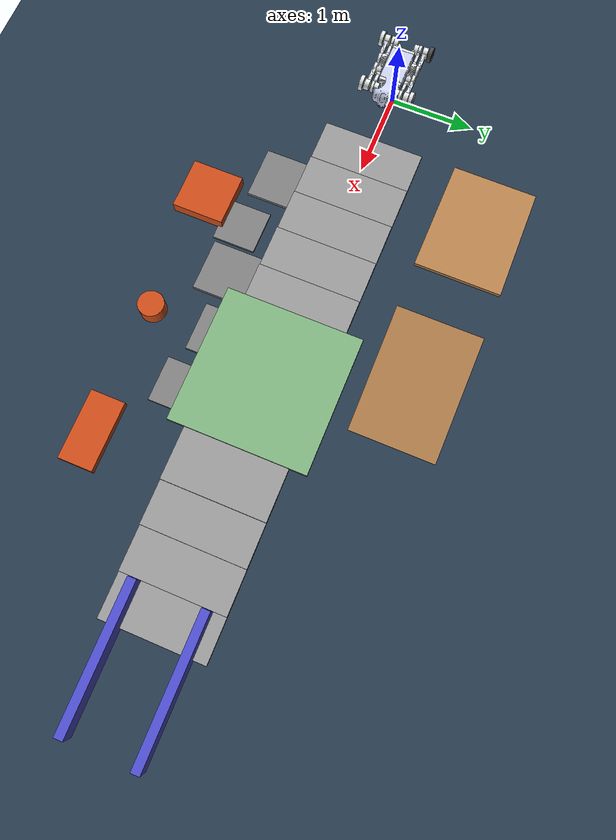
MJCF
<mujoco model="thunder">
  <compiler angle="radian" meshdir="../meshes/" eulerseq="zyx"/>
    <option timestep='0.001' iterations='50' solver='PGS' gravity='0 0 -9.81'>
    <flag frictionloss="enable" sensor="enable"/>
    </option>
   <visual>
    <quality shadowsize="4096"/>
    <map znear="0.05"/>
  </visual>

  <default>
    <joint limited="true"/>
    <motor ctrllimited="true"/>
    <geom condim="4" contype="1" conaffinity="15" solref="0.001 2" friction="0.9 0.2 0.2"/>
    <equality solref="0.001 2"/>
    <default class="leg_joint_param">
      <joint damping="0.01" frictionloss="0.01" armature="0.01"/>
    </default>
  </default>

  <statistic meansize="0.164352" extent="1.07561" center="-0.00820016 -1.48012e-05 -0.160784"/>

  <asset>
    <mesh name="base_link" file="base_link.STL"/>
    <mesh name="FR_hip" file="FR_hip.STL"/>
    <mesh name="FR_thigh" file="FR_thigh.STL"/>
    <mesh name="FR_calf" file="FR_calf.STL"/>
    <mesh name="FR_foot" file="FR_foot.STL"/>
    <mesh name="FL_hip" file="FL_hip.STL"/>
    <mesh name="FL_thigh" file="FL_thigh.STL"/>
    <mesh name="FL_calf" file="FL_calf.STL"/>
    <mesh name="FL_foot" file="FL_foot.STL"/>
    <mesh name="RR_hip" file="RR_hip.STL"/>
    <mesh name="RR_thigh" file="RR_thigh.STL"/>
    <mesh name="RR_calf" file="RR_calf.STL"/>
    <mesh name="RR_foot" file="RR_foot.STL"/>
    <mesh name="RL_hip" file="RL_hip.STL"/>
    <mesh name="RL_thigh" file="RL_thigh.STL"/>
    <mesh name="RL_calf" file="RL_calf.STL"/>
    <mesh name="RL_foot" file="RL_foot.STL"/>
    <material name="matplane" reflectance="0.3" texture="texplane" texrepeat="1 1" texuniform="true"/>
    <material name="matgeom" texture="texgeom" texuniform="true" rgba="0.8 0.6 .4 1"/>
    <texture name="texplane" type="2d" builtin="checker" rgb1=".2 .3 .4" rgb2=".1 0.15 0.2" width="512" height="512" mark="cross" markrgb=".8 .8 .8"/>
    <texture name="texgeom" type="cube" builtin="flat" mark="cross" width="127" height="1278" rgb1="0.8 0.6 0.4" rgb2="0.8 0.6 0.4" markrgb="1 1 1" random="0.01"/>
    <texture type="skybox" builtin="gradient" rgb1="1 1 1" rgb2=".6 .8 1" width="256" height="256"/>
  </asset>

  <worldbody>
    <light directional="true" diffuse=".4 .4 .4" specular="0.1 0.1 0.1" pos="0 0 5.0" dir="0 0 -1" castshadow="false"/>
    <light directional="true" diffuse=".6 .6 .6" specular="0.2 0.2 0.2" pos="0 0 4" dir="0 0 -1"/>
    <geom name="ground" type="plane" size="0 0 1" pos="0.001 0 0" quat="1 0 0 0" material="matplane" condim="1" conaffinity='15'/>

    <!-- 台阶地形 - 测试爬台阶能力 -->
    <geom name="step1" type="box" pos="1.0 0 0.025" size="0.4 0.6 0.025" rgba="0.6 0.6 0.6 1" condim="3"/>
    <geom name="step2" type="box" pos="1.5 0 0.05" size="0.4 0.6 0.025" rgba="0.6 0.6 0.6 1" condim="3"/>
    <geom name="step3" type="box" pos="2.0 0 0.075" size="0.4 0.6 0.025" rgba="0.6 0.6 0.6 1" condim="3"/>
    <geom name="step4" type="box" pos="2.5 0 0.1" size="0.4 0.6 0.025" rgba="0.6 0.6 0.6 1" condim="3"/>
    <geom name="step5" type="box" pos="3.0 0 0.125" size="0.4 0.6 0.025" rgba="0.6 0.6 0.6 1" condim="3"/>

    <!-- 平台区域 -->
    <geom name="platform" type="box" pos="3.8 0 0.15" size="0.8 0.8 0.025" rgba="0.5 0.7 0.5 1" condim="3"/>

    <!-- 下降台阶 -->
    <geom name="step_down1" type="box" pos="4.8 0 0.125" size="0.4 0.6 0.025" rgba="0.6 0.6 0.6 1" condim="3"/>
    <geom name="step_down2" type="box" pos="5.3 0 0.1" size="0.4 0.6 0.025" rgba="0.6 0.6 0.6 1" condim="3"/>
    <geom name="step_down3" type="box" pos="5.8 0 0.075" size="0.4 0.6 0.025" rgba="0.6 0.6 0.6 1" condim="3"/>
    <geom name="step_down4" type="box" pos="6.3 0 0.05" size="0.4 0.6 0.025" rgba="0.6 0.6 0.6 1" condim="3"/>

    <!-- 斜坡地形 -->
    <geom name="ramp1" type="box" pos="1.0 1.5 0.05" size="1.0 0.5 0.02" rgba="0.7 0.5 0.3 1" condim="3" quat="0.9962 0 -0.0872 0"/>  <!-- 10度上坡 -->
    <geom name="ramp2" type="box" pos="3.5 1.5 0.05" size="1.0 0.5 0.02" rgba="0.7 0.5 0.3 1" condim="3" quat="0.9962 0 0.0872 0"/>   <!-- 10度下坡 -->

    <!-- 不规则障碍物 - 测试避障能力 -->
    <geom name="obstacle1" type="box" pos="2.0 -1.5 0.075" size="0.3 0.3 0.075" rgba="0.8 0.3 0.1 1" condim="3"/>
    <geom name="obstacle2" type="cylinder" pos="3.5 -1.5 0.1" size="0.15 0.1" rgba="0.8 0.3 0.1 1" condim="3"/>
    <geom name="obstacle3" type="box" pos="5.0 -1.5 0.05" size="0.4 0.2 0.05" rgba="0.8 0.3 0.1 1" condim="3"/>

    <!-- 凹凸不平地形块 -->
    <geom name="rough1" type="box" pos="1.5 -0.8 0.02" size="0.3 0.3 0.02" rgba="0.5 0.5 0.5 1" condim="3"/>
    <geom name="rough2" type="box" pos="2.2 -1.0 0.015" size="0.25 0.25 0.015" rgba="0.5 0.5 0.5 1" condim="3"/>
    <geom name="rough3" type="box" pos="2.8 -0.9 0.025" size="0.3 0.3 0.025" rgba="0.5 0.5 0.5 1" condim="3"/>
    <geom name="rough4" type="box" pos="3.5 -0.7 0.02" size="0.28 0.28 0.02" rgba="0.5 0.5 0.5 1" condim="3"/>
    <geom name="rough5" type="box" pos="4.2 -0.85 0.018" size="0.26 0.26 0.018" rgba="0.5 0.5 0.5 1" condim="3"/>

    <!-- 窄通道 - 测试精确控制 -->
    <geom name="wall_left" type="box" pos="7.0 0.4 0.15" size="0.8 0.05 0.15" rgba="0.3 0.3 0.8 1" condim="3"/>
    <geom name="wall_right" type="box" pos="7.0 -0.4 0.15" size="0.8 0.05 0.15" rgba="0.3 0.3 0.8 1" condim="3"/>
    <body name="base_link" pos='0 0 0.55'>
      <site name='imu' size='0.01' pos='0.0 0 0.0' quat='1 0 0 0'/>
      <inertial pos="-0.00018 0.00759 0.06615" mass="15.05964" fullinertia="0.16838 0.45784 0.44489 0.00036 0.00047 -0.00598"/>
      <joint name="floating_base_joint" type="free" limited='false'/>
      <geom type="mesh" contype="0" conaffinity="0" group="1" density="0" rgba="0.79216 0.81961 0.93333 1" mesh="base_link"/>
      <geom size="0.235 0.125 0.075" pos="0 0.00124 0.06891" type="box" rgba="0.89804 0.91765 0.92941 1"/>
    <body name="FR_hip" pos="0.2395 -0.064709 0.075">
      <inertial pos="0.07152 -0.05064 0.00083" quat="0.626329 0.617527 0.336122 0.336742" mass="1.66357" diaginertia="0.0168527 0.0160417 0.00261558"/>
      <joint name="FR_hip_joint" pos="0 0 0" axis="-1 0 0" limited="true" range="-0.4 0.4" actuatorfrcrange="-120 120" class="leg_joint_param"/>
      <geom type="mesh" contype="0" conaffinity="0" group="1" density="0" rgba="0.89804 0.91765 0.92941 1" mesh="FR_hip"/>
      <geom size="0.06 0.024" pos="0.07752 -0.05564 0.00083" quat="0.707105 0.707108 0 0" type="cylinder" rgba="0.89804 0.91765 0.92941 1"/>
      <body name="FR_thigh" pos="0.078 -0.0795 0">
        <inertial pos="-0.19525 -0.02859 -0.01001" quat="0.479687 0.453781 0.518308 0.543452" mass="2.40998" diaginertia="0.122369 0.120523 0.00342805"/>
        <joint name="FR_thigh_joint" pos="0 0 0" axis="0 1 0" limited="true" range="-3.14 0" actuatorfrcrange="-120 120" class="leg_joint_param"/>
        <geom type="mesh" contype="0" conaffinity="0" group="1" density="0" rgba="0.89804 0.91765 0.92941 1" mesh="FR_thigh"/>
        <geom size="0.064 0.015" pos="0 -0.0195 0" quat="0.707105 0.707108 0 0" type="cylinder" rgba="0.89804 0.91765 0.92941 1"/>
        <geom size="0.09 0.015 0.03" pos="-0.125 -0.02059 -0.01001" quat="0.997888 0 -0.0649542 0" type="box" rgba="0.89804 0.91765 0.92941 1"/>
        <geom size="0.0655 0.028" pos="-0.2485 -0.032 -0.0135" quat="0.707105 0.707108 0 0" type="cylinder" rgba="0.89804 0.91765 0.92941 1"/>
        <body name="FR_calf" pos="-0.24964 -0.057 -0.0135">
          <inertial pos="0.17734 -0.02903 0.0121" quat="0.546491 0.517099 0.44598 0.484828" mass="1.89382" diaginertia="0.0857485 0.0849149 0.00239654"/>
          <joint name="FR_calf_joint" pos="0 0 0" axis="0 1 0" limited="true" range="0 3.14" actuatorfrcrange="-120 120" class="leg_joint_param"/>
          <geom type="mesh" contype="0" conaffinity="0" group="1" density="0" rgba="0.89804 0.91765 0.92941 1" mesh="FR_calf"/>
          <geom size="0.0635 0.015" pos="0 -0.02653 0" quat="0.707105 0.707108 0 0" type="cylinder" rgba="0.89804 0.91765 0.92941 1"/>
          <geom size="0.09 0.02 0.0225" pos="0.11 -0.02903 0.0121" type="box" rgba="0.89804 0.91765 0.92941 1"/>
          <geom size="0.06 0.0275" pos="0.249 -0.02903 0.0181" quat="0.707105 0.707108 0 0" type="cylinder" rgba="0.89804 0.91765 0.92941 1"/>
          <body name="FR_foot" pos="0.24942 -0.061 0.017">
            <inertial pos="0 -0.02931 0" quat="0.707107 0 0 0.707107" mass="0.59453" diaginertia="0.00217 0.00169 0.00169"/>
            <joint name="FR_foot_joint" type="hinge" pos="0 0 0" axis="0 1 0" limited="false" actuatorfrcrange="-60 60" class="leg_joint_param"/>
            <geom type="mesh" contype="0" conaffinity="0" group="1" density="0" rgba="0.89804 0.91765 0.92941 1" mesh="FR_foot"/>
            <geom size="0.085 0.02" pos="0 -0.02931 0" quat="0.707105 0.707108 0 0" type="cylinder" rgba="0.89804 0.91765 0.92941 1"/>
          </body>
        </body>
      </body>
    </body>
    <body name="FL_hip" pos="0.2395 0.065291 0.075">
      <inertial pos="0.07132 0.05064 0.00088" quat="0.34195 0.329 0.622752 0.622101" mass="1.66357" diaginertia="0.0168353 0.0159606 0.00259407"/>
      <joint name="FL_hip_joint" pos="0 0 0" axis="-1 0 0" limited="true" range="-0.4 0.4" actuatorfrcrange="-120 120" class="leg_joint_param"/>
      <geom type="mesh" contype="0" conaffinity="0" group="1" density="0" rgba="0.89804 0.91765 0.92941 1" mesh="FL_hip"/>
      <geom size="0.06 0.024" pos="0.07752 0.05564 0.00083" quat="0.707105 0.707108 0 0" type="cylinder" rgba="0.89804 0.91765 0.92941 1"/>
      <body name="FL_thigh" pos="0.078 0.0795 0">
        <inertial pos="-0.19489 0.02859 -0.01047" quat="0.541158 0.520466 0.449868 0.483613" mass="2.40998" diaginertia="0.121967 0.120083 0.00348012"/>
        <joint name="FL_thigh_joint" pos="0 0 0" axis="0 -1 0" limited="true" range="0 3.14" actuatorfrcrange="-120 120" class="leg_joint_param"/>
        <geom type="mesh" contype="0" conaffinity="0" group="1" density="0" rgba="0.89804 0.91765 0.92941 1" mesh="FL_thigh"/>
        <geom size="0.064 0.015" pos="0 0.0195 0" quat="0.707105 0.707108 0 0" type="cylinder" rgba="0.89804 0.91765 0.92941 1"/>
        <geom size="0.09 0.015 0.03" pos="-0.125 0.02059 -0.01001" quat="0.997888 0 -0.0649542 0" type="box" rgba="0.89804 0.91765 0.92941 1"/>
        <geom size="0.0655 0.028" pos="-0.2485 0.032 -0.0135" quat="0.707105 0.707108 0 0" type="cylinder" rgba="0.89804 0.91765 0.92941 1"/>
        <body name="FL_calf" pos="-0.24964 0.057 -0.0135">
          <inertial pos="0.1774 0.02903 0.0121" quat="0.484577 0.446264 0.516815 0.54675" mass="1.89382" diaginertia="0.0858074 0.0849661 0.00239649"/>
          <joint name="FL_calf_joint" pos="0 0 0" axis="0 -1 0" limited="true" range="-3.14 0" actuatorfrcrange="-120 120" class="leg_joint_param"/>
          <geom type="mesh" contype="0" conaffinity="0" group="1" density="0" rgba="0.89804 0.91765 0.92941 1" mesh="FL_calf"/>
          <geom size="0.0635 0.015" pos="0 0.02653 0" quat="0.707105 0.707108 0 0" type="cylinder" rgba="0.89804 0.91765 0.92941 1"/>
          <geom size="0.09 0.02 0.0225" pos="0.11 0.02903 0.0121" type="box" rgba="0.89804 0.91765 0.92941 1"/>
          <geom size="0.06 0.0275" pos="0.249 0.02903 0.0181" quat="0.707105 0.707108 0 0" type="cylinder" rgba="0.89804 0.91765 0.92941 1"/>
          <body name="FL_foot" pos="0.24942 0.061 0.017">
            <inertial pos="0 0.02893 0" quat="0.707107 0 0 0.707107" mass="0.59453" diaginertia="0.00217 0.00168 0.00168"/>
            <joint name="FL_foot_joint" type="hinge" pos="0 0 0" axis="0 -1 0" limited="false" actuatorfrcrange="-60 60" class="leg_joint_param"/>
            <geom type="mesh" contype="0" conaffinity="0" group="1" density="0" rgba="0.89804 0.91765 0.92941 1" mesh="FL_foot"/>
            <geom size="0.085 0.02" pos="0 0.02893 0" quat="0.707105 0.707108 0 0" type="cylinder" rgba="0.89804 0.91765 0.92941 1"/>
          </body>
        </body>
      </body>
    </body>
    <body name="RR_hip" pos="-0.2395 -0.064709 0.075">
      <inertial pos="-0.07082 -0.05064 0.00079" quat="0.330131 0.339493 0.623716 0.621881" mass="1.66357" diaginertia="0.0166987 0.0158609 0.00257037"/>
      <joint name="RR_hip_joint" pos="0 0 0" axis="1 0 0" limited="true" range="-0.4 0.4" actuatorfrcrange="-120 120" class="leg_joint_param"/>
      <geom type="mesh" contype="0" conaffinity="0" group="1" density="0" rgba="0.89804 0.91765 0.92941 1" mesh="RR_hip"/>
      <geom size="0.06 0.024" pos="-0.07752 -0.05564 0.00083" quat="0.707105 0.707108 0 0" type="cylinder" rgba="0.89804 0.91765 0.92941 1"/>
      <body name="RR_thigh" pos="-0.078 -0.0795 0">
        <inertial pos="0.19489 -0.02859 -0.01049" quat="0.520292 0.541342 0.483451 0.450023" mass="2.40998" diaginertia="0.121967 0.120084 0.00347906"/>
        <joint name="RR_thigh_joint" pos="0 0 0" axis="0 1 0" limited="true" range="0 3.14" actuatorfrcrange="-120 120" class="leg_joint_param"/>
        <geom type="mesh" contype="0" conaffinity="0" group="1" density="0" rgba="0.89804 0.91765 0.92941 1" mesh="RR_thigh"/>
        <geom size="0.064 0.015" pos="0 -0.0195 0" quat="0.707105 0.707108 0 0" type="cylinder" rgba="0.89804 0.91765 0.92941 1"/>
        <geom size="0.09 0.015 0.03" pos="0.125 -0.02059 -0.01001" quat="0.997888 0 0.0649542 0" type="box" rgba="0.89804 0.91765 0.92941 1"/>
        <geom size="0.0655 0.028" pos="0.2485 -0.032 -0.0135" quat="0.707105 0.707108 0 0" type="cylinder" rgba="0.89804 0.91765 0.92941 1"/>
        <body name="RR_calf" pos="0.24964 -0.057 -0.0135">
          <inertial pos="-0.1774 -0.02903 0.0121" quat="0.446264 0.484577 0.54675 0.516815" mass="1.89382" diaginertia="0.0858074 0.0849661 0.00239649"/>
          <joint name="RR_calf_joint" pos="0 0 0" axis="0 1 0" limited="true" range="-3.14 3.14" actuatorfrcrange="-120 120" class="leg_joint_param"/>
          <geom type="mesh" contype="0" conaffinity="0" group="1" density="0" rgba="0.89804 0.91765 0.92941 1" mesh="RR_calf"/>
          <geom size="0.0635 0.015" pos="0 -0.02653 0" quat="0.707105 0.707108 0 0" type="cylinder" rgba="0.89804 0.91765 0.92941 1"/>
          <geom size="0.09 0.02 0.0225" pos="-0.11 -0.02903 0.0121" type="box" rgba="0.89804 0.91765 0.92941 1"/>
          <geom size="0.06 0.0275" pos="-0.249 -0.02903 0.0181" quat="0.707105 0.707108 0 0" type="cylinder" rgba="0.89804 0.91765 0.92941 1"/>
          <body name="RR_foot" pos="-0.24942 -0.061 0.017">
            <inertial pos="0 -0.02931 0" quat="0.707107 0 0 0.707107" mass="0.59453" diaginertia="0.00217 0.00169 0.00169"/>
            <joint name="RR_foot_joint" type="hinge" pos="0 0 0" axis="0 1 0" limited="false" actuatorfrcrange="-60 60" class="leg_joint_param"/>
            <geom type="mesh" contype="0" conaffinity="0" group="1" density="0" rgba="0.89804 0.91765 0.92941 1" mesh="RR_foot"/>
            <geom size="0.085 0.02" pos="0 -0.02931 0" quat="0.707105 0.707108 0 0" type="cylinder" rgba="0.89804 0.91765 0.92941 1"/>
          </body>
        </body>
      </body>
    </body>
    <body name="RL_hip" pos="-0.2395 0.065291 0.075">
      <inertial pos="-0.07136 0.05064 -0.00087" quat="0.622182 0.622765 0.328978 0.341799" mass="1.66357" diaginertia="0.0168545 0.0159706 0.00259488"/>
      <joint name="RL_hip_joint" pos="0 0 0" axis="1 0 0" limited="true" range="-0.4 0.4" actuatorfrcrange="-120 120" class="leg_joint_param"/>
      <geom type="mesh" contype="0" conaffinity="0" group="1" density="0" rgba="0.89804 0.91765 0.92941 1" mesh="RL_hip"/>
      <geom size="0.06 0.024" pos="-0.07752 0.05564 0.00083" quat="0.707105 0.707108 0 0" type="cylinder" rgba="0.89804 0.91765 0.92941 1"/>
      <body name="RL_thigh" pos="-0.078 0.0795 0">
        <inertial pos="0.19525 0.02859 -0.01001" quat="0.453781 0.479687 0.543452 0.518308" mass="2.40998" diaginertia="0.122369 0.120523 0.00342805"/>
        <joint name="RL_thigh_joint" pos="0 0 0" axis="0 -1 0" limited="true" range="-3.14 0" actuatorfrcrange="-120 120" class="leg_joint_param"/>
        <geom type="mesh" contype="0" conaffinity="0" group="1" density="0" rgba="0.89804 0.91765 0.92941 1" mesh="RL_thigh"/>
        <geom size="0.064 0.015" pos="0 0.0195 0" quat="0.707105 0.707108 0 0" type="cylinder" rgba="0.89804 0.91765 0.92941 1"/>
        <geom size="0.09 0.015 0.03" pos="0.125 0.02059 -0.01001" quat="0.997888 0 0.0649542 0" type="box" rgba="0.89804 0.91765 0.92941 1"/>
        <geom size="0.0655 0.028" pos="0.2485 0.032 -0.0135" quat="0.707105 0.707108 0 0" type="cylinder" rgba="0.89804 0.91765 0.92941 1"/>
        <body name="RL_calf" pos="0.24964 0.057 -0.0135">
          <inertial pos="-0.1774 0.02903 0.01208" quat="0.514581 0.549163 0.481766 0.448918" mass="1.89382" diaginertia="0.0858073 0.0849747 0.00239804"/>
          <joint name="RL_calf_joint" pos="0 0 0" axis="0 -1 0" limited="true" range="-3.14 3.14" actuatorfrcrange="-120 120" class="leg_joint_param"/>
          <geom type="mesh" contype="0" conaffinity="0" group="1" density="0" rgba="0.89804 0.91765 0.92941 1" mesh="RL_calf"/>
          <geom size="0.0635 0.015" pos="0 0.02653 0" quat="0.707105 0.707108 0 0" type="cylinder" rgba="0.89804 0.91765 0.92941 1"/>
          <geom size="0.09 0.02 0.0225" pos="-0.11 0.02903 0.0121" type="box" rgba="0.89804 0.91765 0.92941 1"/>
          <geom size="0.06 0.0275" pos="-0.249 0.02903 0.0181" quat="0.707105 0.707108 0 0" type="cylinder" rgba="0.89804 0.91765 0.92941 1"/>
          <body name="RL_foot" pos="-0.24942 0.061 0.017">
            <inertial pos="0 0.02931 0" quat="0.707107 0 0 0.707107" mass="0.59453" diaginertia="0.00217 0.00169 0.00169"/>
            <joint name="RL_foot_joint" type="hinge" pos="0 0 0" axis="0 -1 0" limited="false" actuatorfrcrange="-60 60" class="leg_joint_param"/>
            <geom type="mesh" contype="0" conaffinity="0" group="1" density="0" rgba="0.29804 0.29804 0.29804 1" mesh="RL_foot"/>
            <geom size="0.085 0.02" pos="0 0.02931 0" quat="0.707105 0.707108 0 0" type="cylinder" rgba="0.29804 0.29804 0.29804 1"/>
          </body>
        </body>
      </body>
    </body>
    </body>
  </worldbody>

  <actuator>

    <!-- FR leg joints - 120Nm -->
    <motor name="FR_hip_joint" joint="FR_hip_joint" gear="1" ctrllimited="true" ctrlrange="-120 120"/>
    <motor name="FR_thigh_joint" joint="FR_thigh_joint" gear="1" ctrllimited="true" ctrlrange="-120 120"/>
    <motor name="FR_calf_joint" joint="FR_calf_joint" gear="1" ctrllimited="true" ctrlrange="-120 120"/>

    <!-- FL leg joints - 120Nm -->
    <motor name="FL_hip_joint" joint="FL_hip_joint" gear="1" ctrllimited="true" ctrlrange="-120 120"/>
    <motor name="FL_thigh_joint" joint="FL_thigh_joint" gear="1" ctrllimited="true" ctrlrange="-120 120"/>
    <motor name="FL_calf_joint" joint="FL_calf_joint" gear="1" ctrllimited="true" ctrlrange="-120 120"/>

    <!-- RR leg joints - 120Nm -->
    <motor name="RR_hip_joint" joint="RR_hip_joint" gear="1" ctrllimited="true" ctrlrange="-120 120"/>
    <motor name="RR_thigh_joint" joint="RR_thigh_joint" gear="1" ctrllimited="true" ctrlrange="-120 120"/>
    <motor name="RR_calf_joint" joint="RR_calf_joint" gear="1" ctrllimited="true" ctrlrange="-120 120"/>

    <!-- RL leg joints - 120Nm -->
    <motor name="RL_hip_joint" joint="RL_hip_joint" gear="1" ctrllimited="true" ctrlrange="-120 120"/>
    <motor name="RL_thigh_joint" joint="RL_thigh_joint" gear="1" ctrllimited="true" ctrlrange="-120 120"/>
    <motor name="RL_calf_joint" joint="RL_calf_joint" gear="1" ctrllimited="true" ctrlrange="-120 120"/>

    <!-- Wheel joints - 60Nm -->
    <motor name="FR_foot_joint" joint="FR_foot_joint" gear="1" ctrllimited="true" ctrlrange="-60 60"/>
    <motor name="FL_foot_joint" joint="FL_foot_joint" gear="1" ctrllimited="true" ctrlrange="-60 60"/>
    <motor name="RR_foot_joint" joint="RR_foot_joint" gear="1" ctrllimited="true" ctrlrange="-60 60"/>
    <motor name="RL_foot_joint" joint="RL_foot_joint" gear="1" ctrllimited="true" ctrlrange="-60 60"/>
  </actuator>

    <sensor>
      <framequat     name='orientation' objtype='site' noise='0.001' objname='imu'/>
        <framepos     name='position' objtype='site' noise='0.001' objname='imu'/>
        <gyro          name='angular-velocity'    site='imu' noise='0.005' cutoff='34.9'/>
        <velocimeter   name='linear-velocity'     site='imu' noise='0.001' cutoff='30'/>
        <accelerometer name='linear-acceleration' site='imu' noise='0.005' cutoff='157'/>
        <magnetometer  name='magnetometer'        site='imu'/>
    </sensor>
</mujoco>
